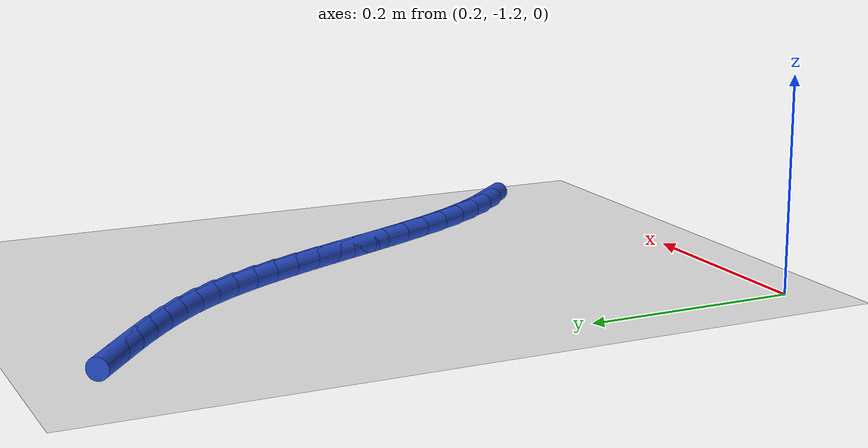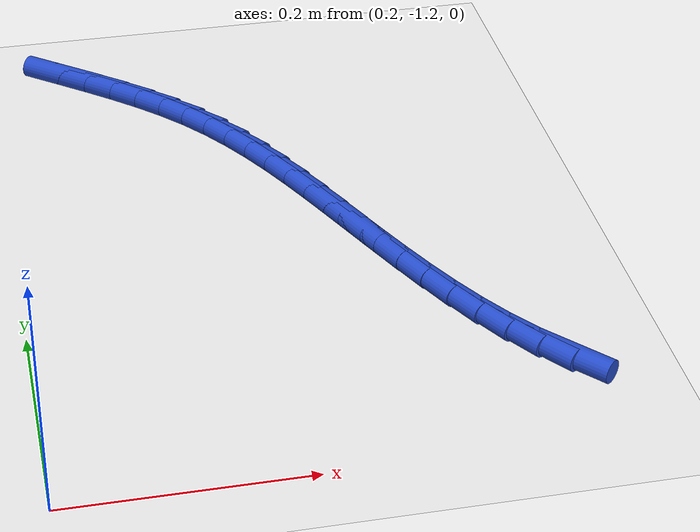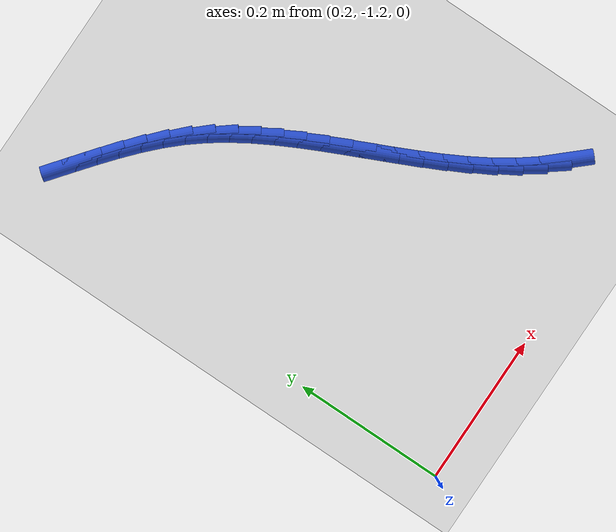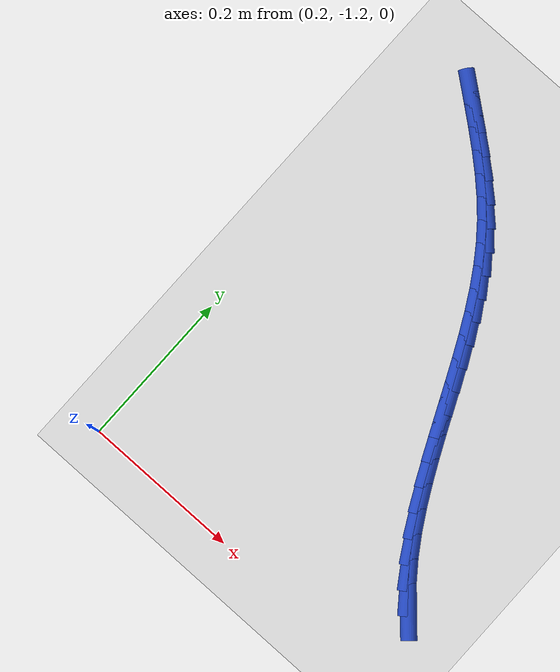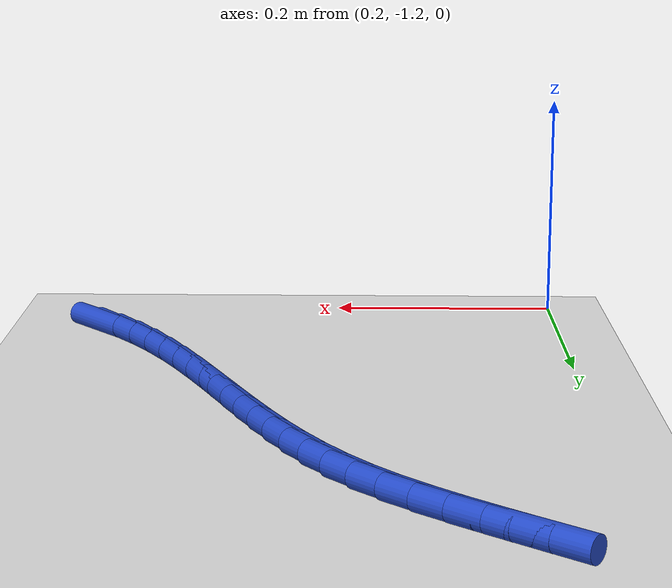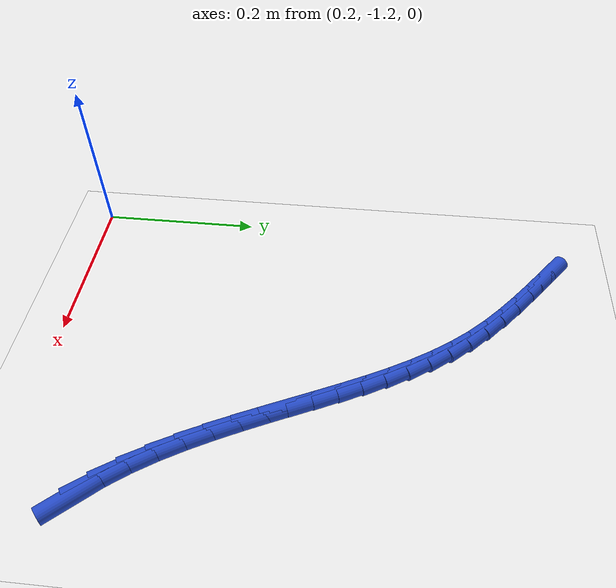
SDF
<sdf version="1.6">
 <world name="default">
  <model name="ground_plane">
   <static>1</static>
   <link name="link">
    <collision name="collision">
     <geometry><plane><normal>0 0 1</normal><size>100 100</size></plane></geometry>
     <surface><friction><ode><mu>100</mu><mu2>50</mu2></ode></friction></surface>
    </collision>
    <visual name="visual">
     <cast_shadows>0</cast_shadows>
     <geometry><plane><normal>0 0 1</normal><size>100 100</size></plane></geometry>
     <material>
      <script><uri>file://media/materials/scripts/gazebo.material</uri><name>Gazebo/WhiteGlow</name></script>
     </material>
    </visual>
   </link>
  </model>
  <model name="line">
   <link name="link_215">
    <pose>0.6133616416704056 -1.1100306828150484 0.01 0 1.57 -0.8319153810816429</pose>
    <collision name="collision">
     <geometry><cylinder><radius>0.01</radius><length>0.08</length></cylinder></geometry>
    </collision>
    <visual name="visual">
     <material>
      <script><name>Gazebo/Blue</name><uri>file://media/materials/scripts/gazebo.material</uri></script>
     </material>
     <geometry><cylinder><radius>0.01</radius><length>0.08</length></cylinder></geometry>
    </visual>
   </link>
   <link name="link_216">
    <pose>0.5940953542982499 -1.0888830973782837 0.01 0 1.57 -0.916785539593579</pose>
    <collision name="collision">
     <geometry><cylinder><radius>0.01</radius><length>0.08</length></cylinder></geometry>
    </collision>
    <visual name="visual">
     <material>
      <script><name>Gazebo/Blue</name><uri>file://media/materials/scripts/gazebo.material</uri></script>
     </material>
     <geometry><cylinder><radius>0.01</radius><length>0.08</length></cylinder></geometry>
    </visual>
   </link>
   <link name="link_217">
    <pose>0.576161291684252 -1.0654873564190996 0.01 0 1.57 -0.9844810289908524</pose>
    <collision name="collision">
     <geometry><cylinder><radius>0.01</radius><length>0.08</length></cylinder></geometry>
    </collision>
    <visual name="visual">
     <material>
      <script><name>Gazebo/Blue</name><uri>file://media/materials/scripts/gazebo.material</uri></script>
     </material>
     <geometry><cylinder><radius>0.01</radius><length>0.08</length></cylinder></geometry>
    </visual>
   </link>
   <link name="link_218">
    <pose>0.5594266088481139 -1.0402933305141997 0.01 0 1.57 -1.0375356439326335</pose>
    <collision name="collision">
     <geometry><cylinder><radius>0.01</radius><length>0.08</length></cylinder></geometry>
    </collision>
    <visual name="visual">
     <material>
      <script><name>Gazebo/Blue</name><uri>file://media/materials/scripts/gazebo.material</uri></script>
     </material>
     <geometry><cylinder><radius>0.01</radius><length>0.08</length></cylinder></geometry>
    </visual>
   </link>
   <link name="link_219">
    <pose>0.5437584608095382 -1.0137508902402887 0.01 0 1.57 -1.0780268687449963</pose>
    <collision name="collision">
     <geometry><cylinder><radius>0.01</radius><length>0.08</length></cylinder></geometry>
    </collision>
    <visual name="visual">
     <material>
      <script><name>Gazebo/Blue</name><uri>file://media/materials/scripts/gazebo.material</uri></script>
     </material>
     <geometry><cylinder><radius>0.01</radius><length>0.08</length></cylinder></geometry>
    </visual>
   </link>
   <link name="link_220">
    <pose>0.529024002588227 -0.9863099061740705 0.01 0 1.57 -1.1074704732133231</pose>
    <collision name="collision">
     <geometry><cylinder><radius>0.01</radius><length>0.08</length></cylinder></geometry>
    </collision>
    <visual name="visual">
     <material>
      <script><name>Gazebo/Blue</name><uri>file://media/materials/scripts/gazebo.material</uri></script>
     </material>
     <geometry><cylinder><radius>0.01</radius><length>0.08</length></cylinder></geometry>
    </visual>
   </link>
   <link name="link_221">
    <pose>0.515090389203883 -0.9584202488922505 0.01 0 1.57 -1.1268233129806333</pose>
    <collision name="collision">
     <geometry><cylinder><radius>0.01</radius><length>0.08</length></cylinder></geometry>
    </collision>
    <visual name="visual">
     <material>
      <script><name>Gazebo/Blue</name><uri>file://media/materials/scripts/gazebo.material</uri></script>
     </material>
     <geometry><cylinder><radius>0.01</radius><length>0.08</length></cylinder></geometry>
    </visual>
   </link>
   <link name="link_222">
    <pose>0.5018236394089741 -0.930528019401302 0.01 0 1.57 -1.1371481133589223</pose>
    <collision name="collision">
     <geometry><cylinder><radius>0.01</radius><length>0.08</length></cylinder></geometry>
    </collision>
    <visual name="visual">
     <material>
      <script><name>Gazebo/Blue</name><uri>file://media/materials/scripts/gazebo.material</uri></script>
     </material>
     <geometry><cylinder><radius>0.01</radius><length>0.08</length></cylinder></geometry>
    </visual>
   </link>
   <link name="link_223">
    <pose>0.4890451736863605 -0.9029313638037736 0.01 0 1.57 -1.1391477336854223</pose>
    <collision name="collision">
     <geometry><cylinder><radius>0.01</radius><length>0.08</length></cylinder></geometry>
    </collision>
    <visual name="visual">
     <material>
      <script><name>Gazebo/Blue</name><uri>file://media/materials/scripts/gazebo.material</uri></script>
     </material>
     <geometry><cylinder><radius>0.01</radius><length>0.08</length></cylinder></geometry>
    </visual>
   </link>
   <link name="link_224">
    <pose>0.47651823019932826 -0.8757354081685141 0.01 0 1.57 -1.1324900840091934</pose>
    <collision name="collision">
     <geometry><cylinder><radius>0.01</radius><length>0.08</length></cylinder></geometry>
    </collision>
    <visual name="visual">
     <material>
      <script><name>Gazebo/Blue</name><uri>file://media/materials/scripts/gazebo.material</uri></script>
     </material>
     <geometry><cylinder><radius>0.01</radius><length>0.08</length></cylinder></geometry>
    </visual>
   </link>
   <link name="link_225">
    <pose>0.46400213368309584 -0.8490322957540798 0.01 0 1.57 -1.1167860823336477</pose>
    <collision name="collision">
     <geometry><cylinder><radius>0.01</radius><length>0.08</length></cylinder></geometry>
    </collision>
    <visual name="visual">
     <material>
      <script><name>Gazebo/Blue</name><uri>file://media/materials/scripts/gazebo.material</uri></script>
     </material>
     <geometry><cylinder><radius>0.01</radius><length>0.08</length></cylinder></geometry>
    </visual>
   </link>
   <link name="link_226">
    <pose>0.451256208872882 -0.8229141698190267 0.01 0 1.57 -1.09167592806065</pose>
    <collision name="collision">
     <geometry><cylinder><radius>0.01</radius><length>0.08</length></cylinder></geometry>
    </collision>
    <visual name="visual">
     <material>
      <script><name>Gazebo/Blue</name><uri>file://media/materials/scripts/gazebo.material</uri></script>
     </material>
     <geometry><cylinder><radius>0.01</radius><length>0.08</length></cylinder></geometry>
    </visual>
   </link>
   <link name="link_227">
    <pose>0.43803978050390563 -0.797473173621911 0.01 0 1.57 -1.0568759844975566</pose>
    <collision name="collision">
     <geometry><cylinder><radius>0.01</radius><length>0.08</length></cylinder></geometry>
    </collision>
    <visual name="visual">
     <material>
      <script><name>Gazebo/Blue</name><uri>file://media/materials/scripts/gazebo.material</uri></script>
     </material>
     <geometry><cylinder><radius>0.01</radius><length>0.08</length></cylinder></geometry>
    </visual>
   </link>
   <link name="link_228">
    <pose>0.4241121733113854 -0.7728014504212888 0.01 0 1.57 -1.0122568290869371</pose>
    <collision name="collision">
     <geometry><cylinder><radius>0.01</radius><length>0.08</length></cylinder></geometry>
    </collision>
    <visual name="visual">
     <material>
      <script><name>Gazebo/Blue</name><uri>file://media/materials/scripts/gazebo.material</uri></script>
     </material>
     <geometry><cylinder><radius>0.01</radius><length>0.08</length></cylinder></geometry>
    </visual>
   </link>
   <link name="link_229">
    <pose>0.40923271203053974 -0.7489911434757159 0.01 0 1.57 -0.9579515297632338</pose>
    <collision name="collision">
     <geometry><cylinder><radius>0.01</radius><length>0.08</length></cylinder></geometry>
    </collision>
    <visual name="visual">
     <material>
      <script><name>Gazebo/Blue</name><uri>file://media/materials/scripts/gazebo.material</uri></script>
     </material>
     <geometry><cylinder><radius>0.01</radius><length>0.08</length></cylinder></geometry>
    </visual>
   </link>
   <link name="link_230">
    <pose>0.39316072139658803 -0.7261343960437497 0.01 0 1.57 -0.8944817656575766</pose>
    <collision name="collision">
     <geometry><cylinder><radius>0.01</radius><length>0.08</length></cylinder></geometry>
    </collision>
    <visual name="visual">
     <material>
      <script><name>Gazebo/Blue</name><uri>file://media/materials/scripts/gazebo.material</uri></script>
     </material>
     <geometry><cylinder><radius>0.01</radius><length>0.08</length></cylinder></geometry>
    </visual>
   </link>
   <link name="link_231">
    <pose>0.37565552614474856 -0.7043233513839458 0.01 0 1.57 -0.8256973652460051</pose>
    <collision name="collision">
     <geometry><cylinder><radius>0.01</radius><length>0.08</length></cylinder></geometry>
    </collision>
    <visual name="visual">
     <material>
      <script><name>Gazebo/Blue</name><uri>file://media/materials/scripts/gazebo.material</uri></script>
     </material>
     <geometry><cylinder><radius>0.01</radius><length>0.08</length></cylinder></geometry>
    </visual>
   </link>
   <link name="link_232">
    <pose>0.35654774813082835 -0.6836099420120819 0.01 0 1.57 -0.7666519827636519</pose>
    <collision name="collision">
     <geometry><cylinder><radius>0.01</radius><length>0.08</length></cylinder></geometry>
    </collision>
    <visual name="visual">
     <material>
      <script><name>Gazebo/Blue</name><uri>file://media/materials/scripts/gazebo.material</uri></script>
     </material>
     <geometry><cylinder><radius>0.01</radius><length>0.08</length></cylinder></geometry>
    </visual>
   </link>
   <link name="link_233">
    <pose>0.33602643633257506 -0.663843951736019 0.01 0 1.57 -0.7215186923949984</pose>
    <collision name="collision">
     <geometry><cylinder><radius>0.01</radius><length>0.08</length></cylinder></geometry>
    </collision>
    <visual name="visual">
     <material>
      <script><name>Gazebo/Blue</name><uri>file://media/materials/scripts/gazebo.material</uri></script>
     </material>
     <geometry><cylinder><radius>0.01</radius><length>0.08</length></cylinder></geometry>
    </visual>
   </link>
   <link name="link_234">
    <pose>0.31439302820207915 -0.6448117785775463 0.01 0 1.57 -0.6896849144102828</pose>
    <collision name="collision">
     <geometry><cylinder><radius>0.01</radius><length>0.08</length></cylinder></geometry>
    </collision>
    <visual name="visual">
     <material>
      <script><name>Gazebo/Blue</name><uri>file://media/materials/scripts/gazebo.material</uri></script>
     </material>
     <geometry><cylinder><radius>0.01</radius><length>0.08</length></cylinder></geometry>
    </visual>
   </link>
   <link name="link_235">
    <pose>0.2919490007612787 -0.6262997982415234 0.01 0 1.57 -0.6705529483685968</pose>
    <collision name="collision">
     <geometry><cylinder><radius>0.01</radius><length>0.08</length></cylinder></geometry>
    </collision>
    <visual name="visual">
     <material>
      <script><name>Gazebo/Blue</name><uri>file://media/materials/scripts/gazebo.material</uri></script>
     </material>
     <geometry><cylinder><radius>0.01</radius><length>0.08</length></cylinder></geometry>
    </visual>
   </link>
   <link name="link_236">
    <pose>0.2689958310321112 -0.6080943864328079 0.01 0 1.57 -0.6636871699688901</pose>
    <collision name="collision">
     <geometry><cylinder><radius>0.01</radius><length>0.08</length></cylinder></geometry>
    </collision>
    <visual name="visual">
     <material>
      <script><name>Gazebo/Blue</name><uri>file://media/materials/scripts/gazebo.material</uri></script>
     </material>
     <geometry><cylinder><radius>0.01</radius><length>0.08</length></cylinder></geometry>
    </visual>
   </link>
  </model>
 </world>
</sdf>
